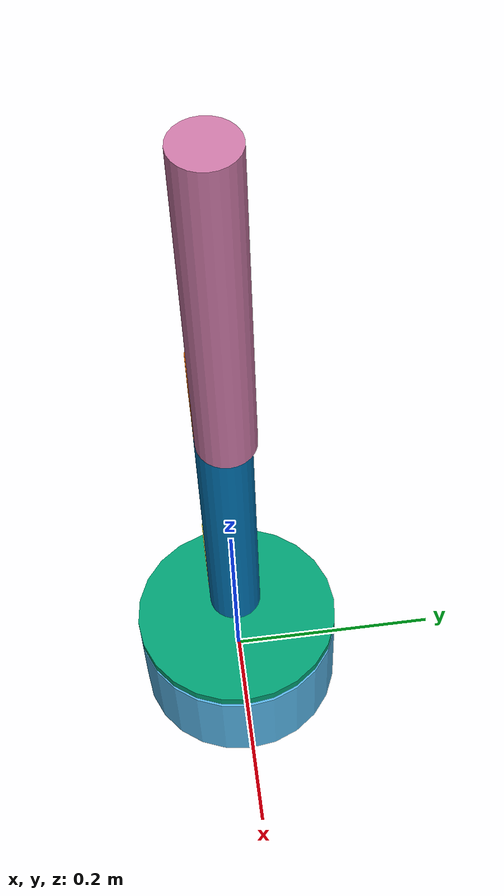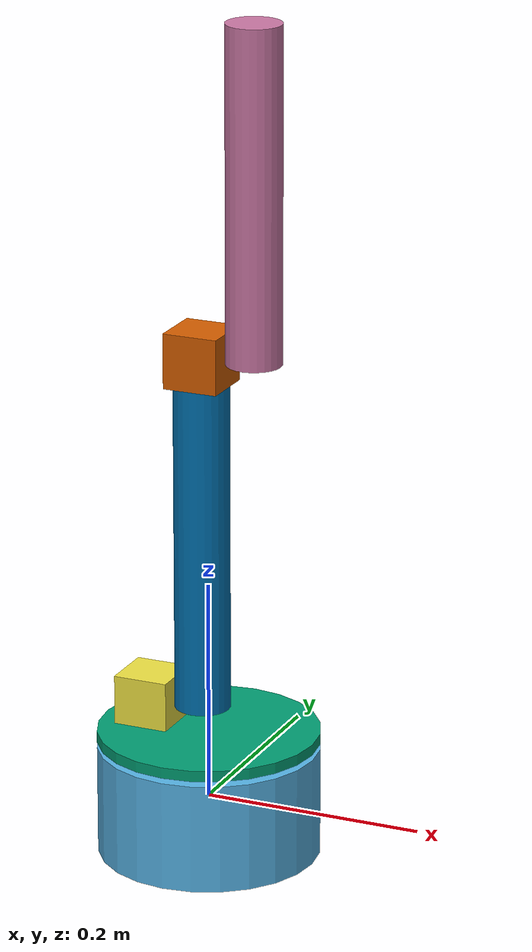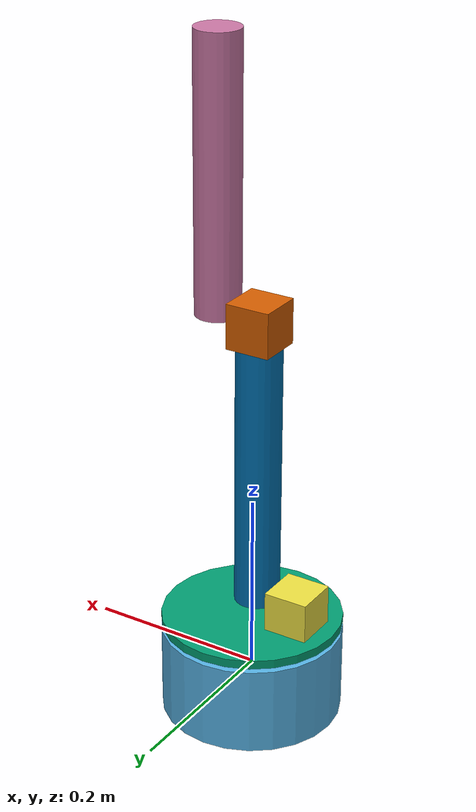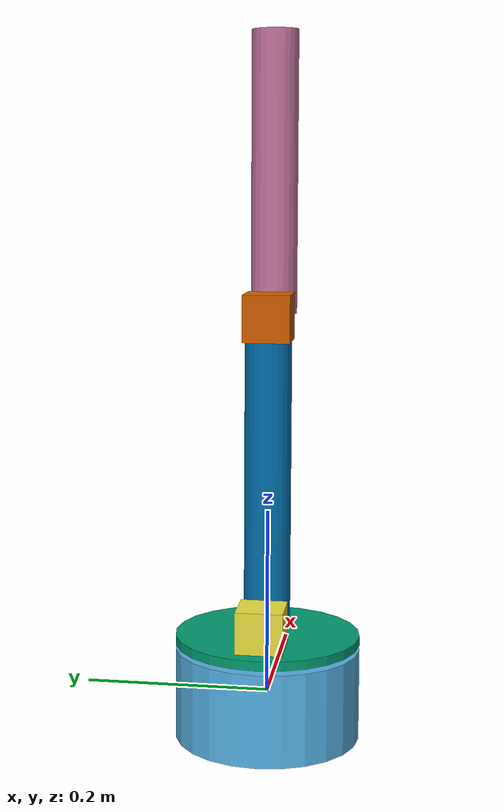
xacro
<?xml version="1.0"?>
<robot xmlns:xacro="http://www.ros.org/wiki/xacro" name="Robotic_Arm">

<xacro:property name="stepper_box_length" value="0.05"/>
<xacro:property name="stepper_box_width" value="0.05"/>
<xacro:property name="stepper_box_height" value="0.05"/>
<xacro:property name="L1_arm_length" value="0.3"/>
<xacro:property name="L1_arm_radius" value="0.025"/>
<xacro:property name="L2_arm_length" value="0.3"/>
<xacro:property name="L2_arm_radius" value="0.025"/>

    <link name="world_link">
    </link>
    <link name="base_link">
    <visual>
        <geometry>
            <cylinder radius="0.10" length="0.1"/>
        </geometry>
    </visual>
    </link>
    <joint name="world_to_base_joint" type="fixed">
        <parent link="world_link"/>
        <child link="base_link"/>
    </joint>
    <link name="upper_base_link">
        <visual>
            <geometry>
                <cylinder radius="0.10" length="0.01"/>
            </geometry>
        </visual>
    </link>
    <joint name="base_to_upper_base" type="continuous">
        <parent link="base_link"/>
        <child link="upper_base_link"/>
        <origin xyz="0.0 0.0 0.06" rpy="0.0 0.0 0.0"/>
        <axis xyz="0.0 0.0 1.0"/>

    </joint>
    <link name="base_stepper_link">
        <visual>
            <geometry>
                <box size="0.05 0.05 0.05"/>
            </geometry>
        </visual>
    </link>
    <joint name="upper_base_to_base_stepper" type="fixed">
        <parent link="upper_base_link"/>
        <child link="base_stepper_link"/>
        <origin xyz="-0.056 0.0 ${stepper_box_height/2}" rpy="0.0 0.0 0.0"/>

    </joint>
    <link name="L1_link">
        <visual>
            <geometry>
                <cylinder radius="${L1_arm_radius}" length="${L1_arm_length}"/>
            </geometry>
            <origin xyz="0.0 0.0 ${L1_arm_length/2}" rpy="0.0 0.0 0.0"/>

        </visual>
    </link>
    <joint name="base_stepper_to_L1_joint" type="revolute">
        <parent link="base_stepper_link"/>
        <child link="L1_link"/>
        <origin xyz="0.05 0.0 0.0" rpy="0.0 0.0 0.0"/>
        <axis xyz="1.0 0.0 0.0"/>
        <limit lower="-1.57" upper="1.57" effort="9.8" velocity="2.0"/>

    </joint>
    <link name="upper_stepper_link">
        <visual>
        <geometry>
            <box size="${stepper_box_length} ${stepper_box_width} ${stepper_box_height}"/>
        </geometry>
        </visual>
    </link>
    <joint name="joint_name" type="fixed">
        <parent link="L1_link"/>
        <child link="upper_stepper_link"/>
        <origin xyz="0.0 0.0 ${L1_arm_length + stepper_box_height/2}" rpy="0.0 0.0 0.0"/>
    </joint>
    <link name="L2_link">
        <visual>
            <geometry>
                <cylinder radius="${L2_arm_radius}" length="${L2_arm_length}"/>
            </geometry>
            <origin xyz="0.0 0.0 ${L2_arm_length/2}" rpy="0.0 0.0 0.0"/>

        </visual>
    </link>
    <joint name="upper_stepper_to_L2_joint" type="continuous">
        <parent link="upper_stepper_link"/>
        <child link="L2_link"/>
        <origin xyz="${stepper_box_length/2 + L2_arm_radius} 0.0 0.0" rpy="0.0 0.0 0.0"/>
        <axis xyz="1.0 0.0 0.0"/>
    </joint>

</robot>
